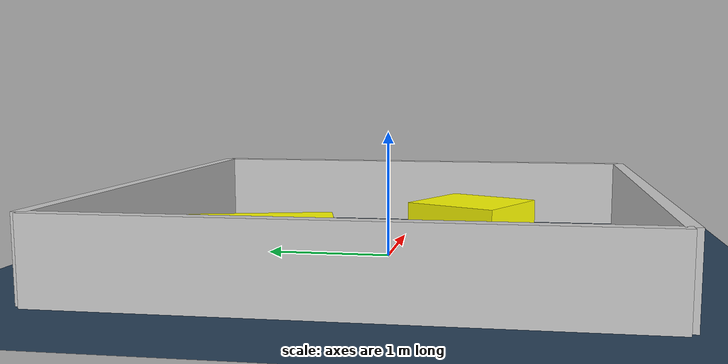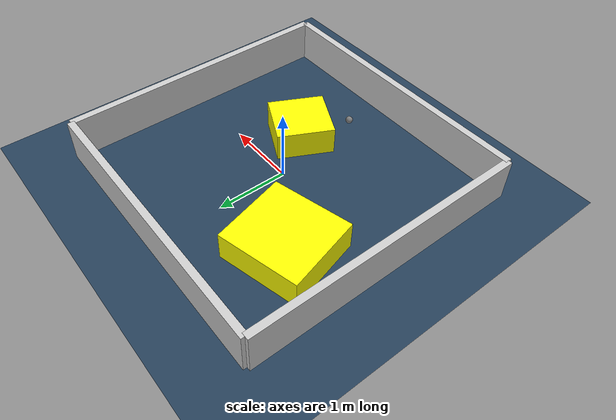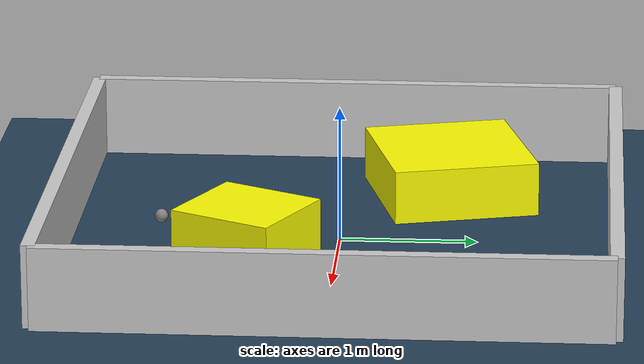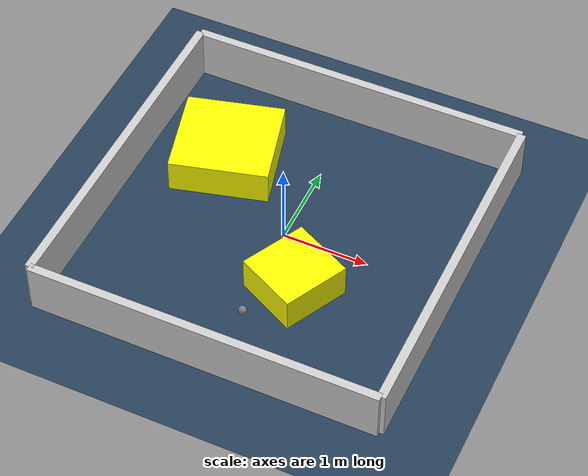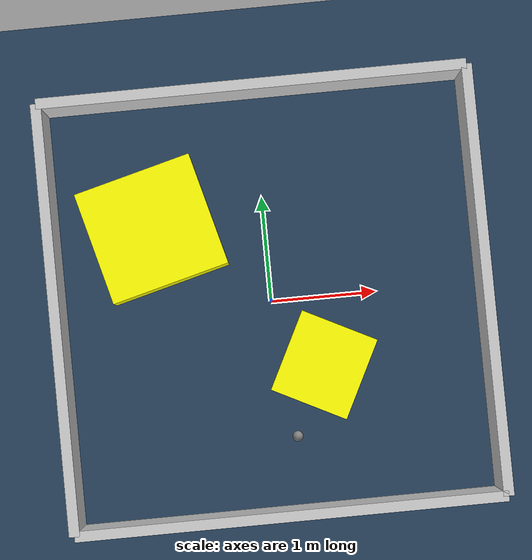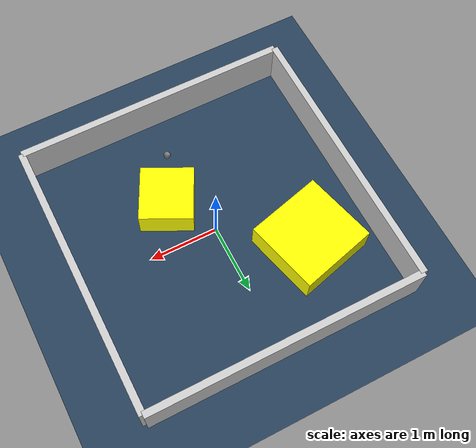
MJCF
<?xml version="1.0" ?>
<mujoco model="generated_environment">
  <option timestep="0.01" integrator="RK4" cone="elliptic"/>
  <default>
    <geom density="1"/>
  </default>
  <asset>
    <texture builtin="gradient" height="3072" rgb1="0.3 0.5 0.7" rgb2="0 0 0" type="skybox" width="512"/>
    <texture builtin="checker" height="300" mark="edge" markrgb="0.8 0.8 0.8" name="groundplane" rgb1="0.2 0.3 0.4" rgb2="0.1 0.2 0.3" type="2d" width="300"/>
    <material name="groundplane" reflectance="0.2" texrepeat="5 5" texture="groundplane" texuniform="true"/>
    <material name="robot" rgba="0.0 1.0 0.0 1"/>
  </asset>
  <worldbody>
    <light dir="0 0 -1" directional="true" pos="0 0 1.5"/>
    <geom condim="4" friction="1.0 0.005 0.001" material="groundplane" name="floor" size="0 0 0.05" type="plane"/>
    <body name="walls">
      <geom name="wall_1" condim="4" pos="-2.0 0.0 0.3" rgba="0.800000011920929 0.800000011920929 0.800000011920929 1.0" size="0.05 2.0 0.3" type="box"/>
      <geom name="wall_2" condim="4" pos="2.0 0.0 0.3" rgba="0.800000011920929 0.800000011920929 0.800000011920929 1.0" size="0.05 2.0 0.3" type="box"/>
      <geom name="wall_3" condim="4" pos="0.0 -2.0 0.3" rgba="0.800000011920929 0.800000011920929 0.800000011920929 1.0" size="2.0 0.05 0.3" type="box"/>
      <geom name="wall_4" condim="4" pos="0.0 2.0 0.3" rgba="0.800000011920929 0.800000011920929 0.800000011920929 1.0" size="2.0 0.05 0.3" type="box"/>
    </body>
    <body name="robot">
      <joint name="joint_x" type="slide" pos="0 0 0" axis="1 0 0"/>
      <joint name="joint_y" type="slide" pos="0 0 0" axis="0 1 0"/>
      <geom name="robot" type="sphere" pos="0.12978883241155237 -1.2932364512479353 0.2" size="0.05" mass="5." friction="1.0 0.005 0.0001" condim="4"/>
      <site name="sensor_ball"/>
    </body>
    <body name="obstacle_1_movable">
      <geom name="obstacle_1_movable" condim="4" pos="0.43476079960701597 -0.64789793446289 0.2" euler="0 0 333.27157421435675" friction="1.0 0.005 0.001" rgba="1 1 0 1" size="0.37776150562477356 0.39779179196686654 0.2" type="box" mass="0.1"/>
      <joint type="free"/>
    </body>
    <body name="obstacle_2_movable">
      <geom name="obstacle_2_movable" condim="4" pos="-1.054053697940395 0.7671324092489207 0.2" euler="0 0 104.64817888557951" friction="1.0 0.005 0.001" rgba="1 1 0 1" size="0.5435738740834132 0.56889254521003 0.2" type="box" mass="0.1"/>
      <joint type="free"/>
    </body>
  </worldbody>
  <actuator>
    <motor name="actuator_x" joint="joint_x" gear="1" ctrlrange="-1 1"/>
    <motor name="actuator_y" joint="joint_y" gear="1" ctrlrange="-1 1"/>
  </actuator>
</mujoco>
